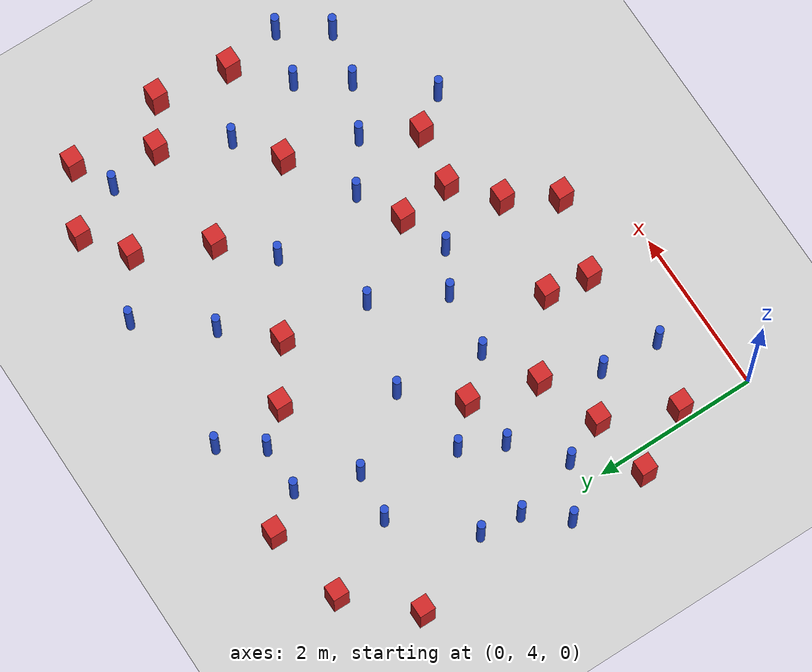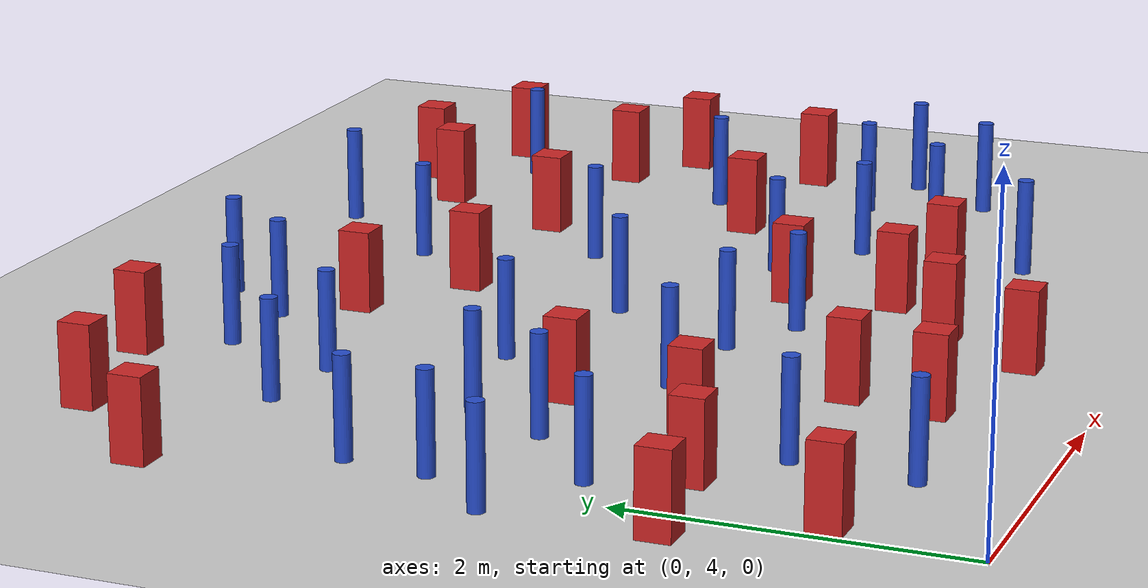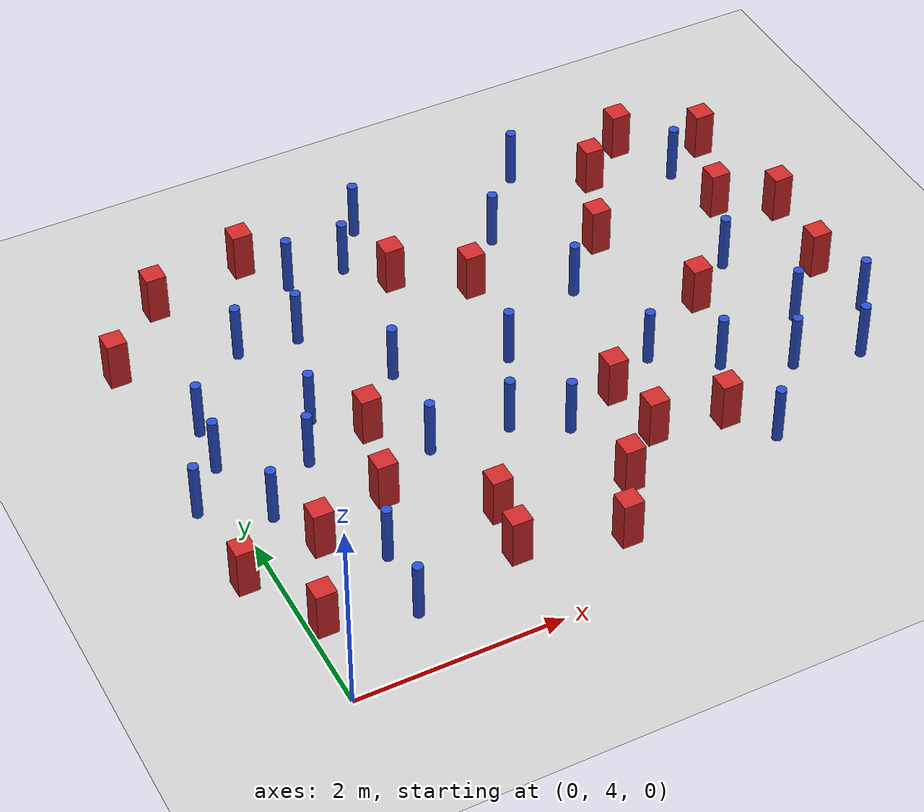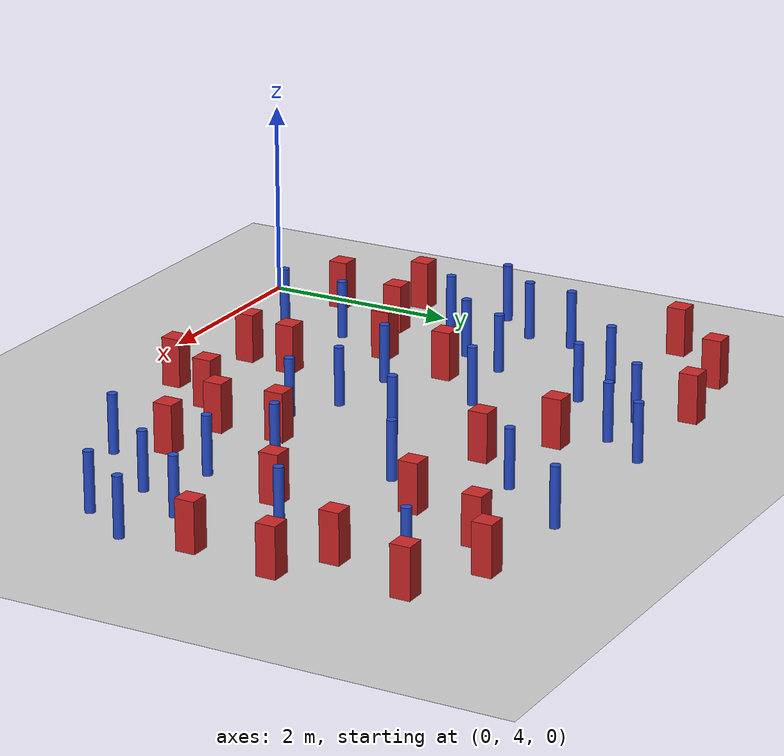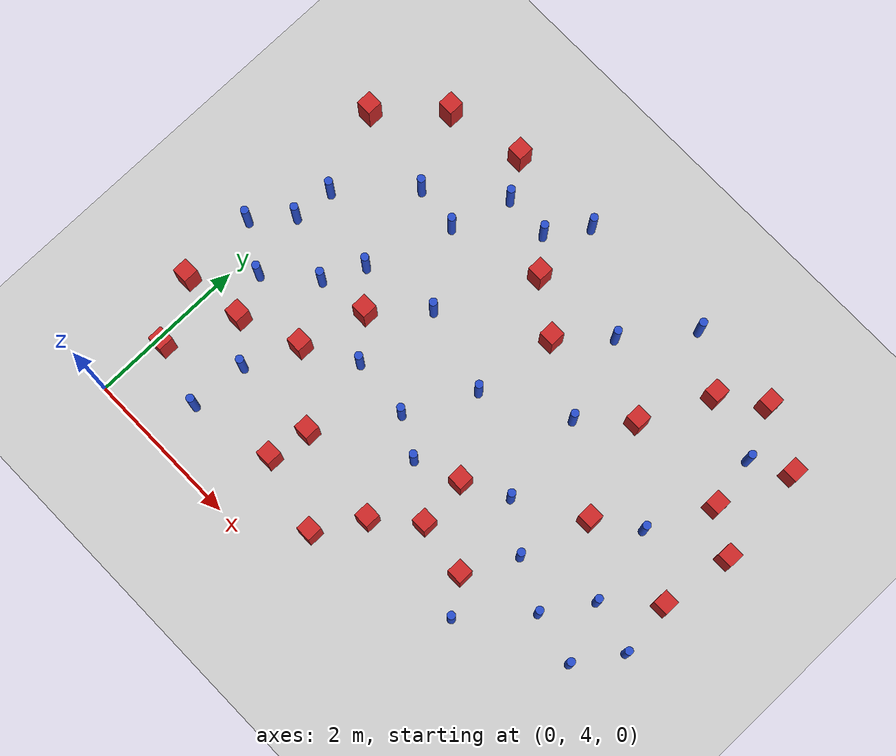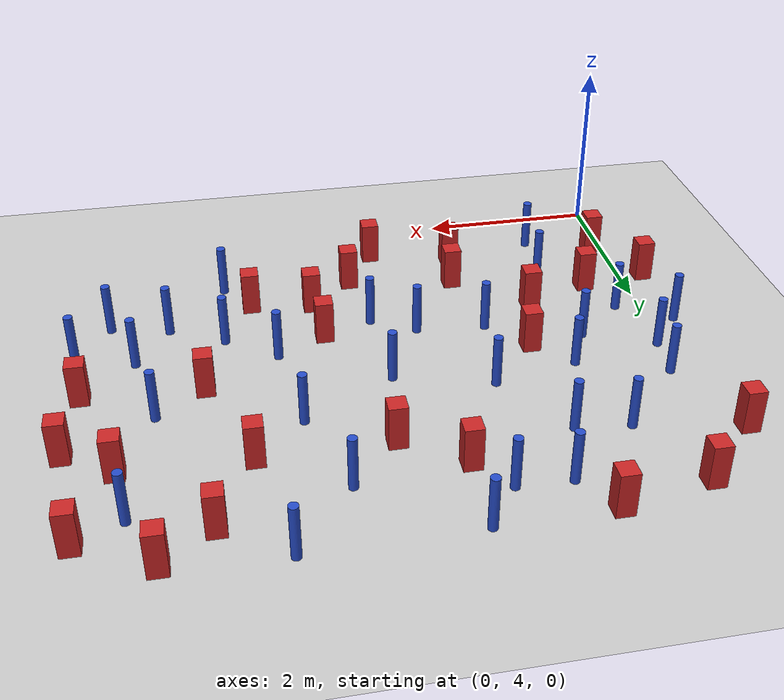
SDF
<sdf version="1.6">
 <world name="default">
  <model name="ground_plane">
   <static>1</static>
   <link name="link">
    <collision name="collision">
     <geometry><plane><normal>0 0 1</normal><size>100 100</size></plane></geometry>
     <surface><friction><ode><mu>100</mu><mu2>50</mu2></ode></friction></surface>
    </collision>
    <visual name="visual">
     <cast_shadows>0</cast_shadows>
     <geometry><plane><normal>0 0 1</normal><size>100 100</size></plane></geometry>
     <material>
      <ambient>1.0 1.0 1.0 1.0</ambient>
      <diffuse>0.8 0.8 0.8 1.0</diffuse>
      <specular>0.01 0.01 0.01 1.000000</specular>
     </material>
    </visual>
   </link>
  </model>
  <model name="square_post_obstacle2">
   <static>true</static>
   <pose>5.06235247222 6.9928608238 1.91545236811e-07 -7.35059704564e-06 1.12565212e-07 2.39332434364e-05</pose>
   <link name="link">
    <pose>0 0 0.25 0 -0 0</pose>
    <inertial>
     <mass>100</mass>
     <inertia>
      <ixx>0.166667</ixx>
      <ixy>0</ixy>
      <ixz>0</ixz>
      <iyy>0.166667</iyy>
      <iyz>0</iyz>
      <izz>0.166667</izz>
     </inertia>
    </inertial>
    <collision name="collision"><geometry><box><size>.2 .2 .5</size></box></geometry></collision>
    <visual name="visual">
     <geometry><box><size>.2 .2 .5</size></box></geometry>
     <material>
      <script><name>Gazebo/Red</name><uri>file://media/materials/scripts/gazebo.material</uri></script>
     </material>
    </visual>
   </link>
  </model>
  <model name="square_post_obstacle3">
   <static>true</static>
   <pose>2.94044296209 4.58378525591 1.91545236811e-07 -7.35059704564e-06 1.12565212e-07 2.39332434364e-05</pose>
   <link name="link">
    <pose>0 0 0.25 0 -0 0</pose>
    <inertial>
     <mass>100</mass>
     <inertia>
      <ixx>0.166667</ixx>
      <ixy>0</ixy>
      <ixz>0</ixz>
      <iyy>0.166667</iyy>
      <iyz>0</iyz>
      <izz>0.166667</izz>
     </inertia>
    </inertial>
    <collision name="collision"><geometry><box><size>.2 .2 .5</size></box></geometry></collision>
    <visual name="visual">
     <geometry><box><size>.2 .2 .5</size></box></geometry>
     <material>
      <script><name>Gazebo/Red</name><uri>file://media/materials/scripts/gazebo.material</uri></script>
     </material>
    </visual>
   </link>
  </model>
  <model name="square_post_obstacle5">
   <static>true</static>
   <pose>0.504304640819 5.7172666368 1.91545236811e-07 -7.35059704564e-06 1.12565212e-07 2.39332434364e-05</pose>
   <link name="link">
    <pose>0 0 0.25 0 -0 0</pose>
    <inertial>
     <mass>100</mass>
     <inertia>
      <ixx>0.166667</ixx>
      <ixy>0</ixy>
      <ixz>0</ixz>
      <iyy>0.166667</iyy>
      <iyz>0</iyz>
      <izz>0.166667</izz>
     </inertia>
    </inertial>
    <collision name="collision"><geometry><box><size>.2 .2 .5</size></box></geometry></collision>
    <visual name="visual">
     <geometry><box><size>.2 .2 .5</size></box></geometry>
     <material>
      <script><name>Gazebo/Red</name><uri>file://media/materials/scripts/gazebo.material</uri></script>
     </material>
    </visual>
   </link>
  </model>
  <model name="square_post_obstacle6">
   <static>true</static>
   <pose>5.95766056087 8.14996641088 1.91545236811e-07 -7.35059704564e-06 1.12565212e-07 2.39332434364e-05</pose>
   <link name="link">
    <pose>0 0 0.25 0 -0 0</pose>
    <inertial>
     <mass>100</mass>
     <inertia>
      <ixx>0.166667</ixx>
      <ixy>0</ixy>
      <ixz>0</ixz>
      <iyy>0.166667</iyy>
      <iyz>0</iyz>
      <izz>0.166667</izz>
     </inertia>
    </inertial>
    <collision name="collision"><geometry><box><size>.2 .2 .5</size></box></geometry></collision>
    <visual name="visual">
     <geometry><box><size>.2 .2 .5</size></box></geometry>
     <material>
      <script><name>Gazebo/Red</name><uri>file://media/materials/scripts/gazebo.material</uri></script>
     </material>
    </visual>
   </link>
  </model>
  <model name="pole_obstacle5">
   <static>true</static>
   <pose>1.44780007454 8.27614773317 7.38925637345e-09 -8.47170692798e-08 1.24976764881e-08 -1.74513093027e-07</pose>
   <link name="link">
    <pose>0 0 0.3 0 -0 0</pose>
    <inertial>
     <mass>1</mass>
     <inertia><ixx>0.145833</ixx><ixy>0</ixy><ixz>0</ixz><iyy>0.145833</iyy><iyz>0</iyz><izz>0.125</izz></inertia>
    </inertial>
    <collision name="collision">
     <geometry><cylinder><radius>0.05</radius><length>.6</length></cylinder></geometry>
    </collision>
    <visual name="visual">
     <geometry><cylinder><radius>0.05</radius><length>.6</length></cylinder></geometry>
     <material>
      <script><name>Gazebo/Blue</name><uri>file://media/materials/scripts/gazebo.material</uri></script>
     </material>
    </visual>
   </link>
  </model>
  <model name="pole_obstacle10">
   <static>true</static>
   <pose>4.10078407601 7.67983366689 7.38925637345e-09 -8.47170692796e-08 1.24976764786e-08 -1.74513093032e-07</pose>
   <link name="link">
    <pose>0 0 0.3 0 -0 0</pose>
    <inertial>
     <mass>1</mass>
     <inertia><ixx>0.145833</ixx><ixy>0</ixy><ixz>0</ixz><iyy>0.145833</iyy><iyz>0</iyz><izz>0.125</izz></inertia>
    </inertial>
    <collision name="collision">
     <geometry><cylinder><radius>0.05</radius><length>.6</length></cylinder></geometry>
    </collision>
    <visual name="visual">
     <geometry><cylinder><radius>0.05</radius><length>.6</length></cylinder></geometry>
     <material>
      <script><name>Gazebo/Blue</name><uri>file://media/materials/scripts/gazebo.material</uri></script>
     </material>
    </visual>
   </link>
  </model>
  <model name="pole_obstacle13">
   <static>true</static>
   <pose>2.60298710889 9.47166998292 7.38925637345e-09 -8.47170692793e-08 1.24976764408e-08 -1.74513093041e-07</pose>
   <link name="link">
    <pose>0 0 0.3 0 -0 0</pose>
    <inertial>
     <mass>1</mass>
     <inertia><ixx>0.145833</ixx><ixy>0</ixy><ixz>0</ixz><iyy>0.145833</iyy><iyz>0</iyz><izz>0.125</izz></inertia>
    </inertial>
    <collision name="collision">
     <geometry><cylinder><radius>0.05</radius><length>.6</length></cylinder></geometry>
    </collision>
    <visual name="visual">
     <geometry><cylinder><radius>0.05</radius><length>.6</length></cylinder></geometry>
     <material>
      <script><name>Gazebo/Blue</name><uri>file://media/materials/scripts/gazebo.material</uri></script>
     </material>
    </visual>
   </link>
  </model>
  <model name="pole_obstacle21">
   <static>true</static>
   <pose>5.84438588983 8.80280604812 7.38925637345e-09 -8.471706928e-08 1.24976765081e-08 -1.74513093015e-07</pose>
   <link name="link">
    <pose>0 0 0.3 0 -0 0</pose>
    <inertial>
     <mass>1</mass>
     <inertia><ixx>0.145833</ixx><ixy>0</ixy><ixz>0</ixz><iyy>0.145833</iyy><iyz>0</iyz><izz>0.125</izz></inertia>
    </inertial>
    <collision name="collision">
     <geometry><cylinder><radius>0.05</radius><length>.6</length></cylinder></geometry>
    </collision>
    <visual name="visual">
     <geometry><cylinder><radius>0.05</radius><length>.6</length></cylinder></geometry>
     <material>
      <script><name>Gazebo/Blue</name><uri>file://media/materials/scripts/gazebo.material</uri></script>
     </material>
    </visual>
   </link>
  </model>
  <model name="square_post_obstacle34">
   <static>true</static>
   <pose>2.06675240171 5.36417711203 1.91545236811e-07 -7.35059704564e-06 1.12565212e-07 2.39332434364e-05</pose>
   <link name="link">
    <pose>0 0 0.25 0 -0 0</pose>
    <inertial>
     <mass>100</mass>
     <inertia>
      <ixx>0.166667</ixx>
      <ixy>0</ixy>
      <ixz>0</ixz>
      <iyy>0.166667</iyy>
      <iyz>0</iyz>
      <izz>0.166667</izz>
     </inertia>
    </inertial>
    <collision name="collision"><geometry><box><size>.2 .2 .5</size></box></geometry></collision>
    <visual name="visual">
     <geometry><box><size>.2 .2 .5</size></box></geometry>
     <material>
      <script><name>Gazebo/Red</name><uri>file://media/materials/scripts/gazebo.material</uri></script>
     </material>
    </visual>
   </link>
  </model>
  <model name="pole_obstacle31">
   <static>true</static>
   <pose>0.861258516437 8.34180682255 7.38925637345e-09 -8.47170692797e-08 1.249767648e-08 -1.74513093032e-07</pose>
   <link name="link">
    <pose>0 0 0.3 0 -0 0</pose>
    <inertial>
     <mass>1</mass>
     <inertia><ixx>0.145833</ixx><ixy>0</ixy><ixz>0</ixz><iyy>0.145833</iyy><iyz>0</iyz><izz>0.125</izz></inertia>
    </inertial>
    <collision name="collision">
     <geometry><cylinder><radius>0.05</radius><length>.6</length></cylinder></geometry>
    </collision>
    <visual name="visual">
     <geometry><cylinder><radius>0.05</radius><length>.6</length></cylinder></geometry>
     <material>
      <script><name>Gazebo/Blue</name><uri>file://media/materials/scripts/gazebo.material</uri></script>
     </material>
    </visual>
   </link>
  </model>
  <model name="pole_obstacle35">
   <static>true</static>
   <pose>3.15810378008 6.0194061179 7.38925637345e-09 -8.47170692798e-08 1.24976765033e-08 -1.74513093019e-07</pose>
   <link name="link">
    <pose>0 0 0.3 0 -0 0</pose>
    <inertial>
     <mass>1</mass>
     <inertia><ixx>0.145833</ixx><ixy>0</ixy><ixz>0</ixz><iyy>0.145833</iyy><iyz>0</iyz><izz>0.125</izz></inertia>
    </inertial>
    <collision name="collision">
     <geometry><cylinder><radius>0.05</radius><length>.6</length></cylinder></geometry>
    </collision>
    <visual name="visual">
     <geometry><cylinder><radius>0.05</radius><length>.6</length></cylinder></geometry>
     <material>
      <script><name>Gazebo/Blue</name><uri>file://media/materials/scripts/gazebo.material</uri></script>
     </material>
    </visual>
   </link>
  </model>
  <model name="pole_obstacle45">
   <static>true</static>
   <pose>1.09124608161 7.21371646466 7.38925637345e-09 -8.47170692799e-08 1.24976765033e-08 -1.74513093018e-07</pose>
   <link name="link">
    <pose>0 0 0.3 0 -0 0</pose>
    <inertial>
     <mass>1</mass>
     <inertia><ixx>0.145833</ixx><ixy>0</ixy><ixz>0</ixz><iyy>0.145833</iyy><iyz>0</iyz><izz>0.125</izz></inertia>
    </inertial>
    <collision name="collision">
     <geometry><cylinder><radius>0.05</radius><length>.6</length></cylinder></geometry>
    </collision>
    <visual name="visual">
     <geometry><cylinder><radius>0.05</radius><length>.6</length></cylinder></geometry>
     <material>
      <script><name>Gazebo/Blue</name><uri>file://media/materials/scripts/gazebo.material</uri></script>
     </material>
    </visual>
   </link>
  </model>
  <model name="square_post_obstacle47">
   <static>true</static>
   <pose>3.71556956101 6.2331272801 1.91545236811e-07 -7.35059704564e-06 1.12565212e-07 2.39332434364e-05</pose>
   <link name="link">
    <pose>0 0 0.25 0 -0 0</pose>
    <inertial>
     <mass>100</mass>
     <inertia>
      <ixx>0.166667</ixx>
      <ixy>0</ixy>
      <ixz>0</ixz>
      <iyy>0.166667</iyy>
      <iyz>0</iyz>
      <izz>0.166667</izz>
     </inertia>
    </inertial>
    <collision name="collision"><geometry><box><size>.2 .2 .5</size></box></geometry></collision>
    <visual name="visual">
     <geometry><box><size>.2 .2 .5</size></box></geometry>
     <material>
      <script><name>Gazebo/Red</name><uri>file://media/materials/scripts/gazebo.material</uri></script>
     </material>
    </visual>
   </link>
  </model>
  <model name="pole_obstacle46">
   <static>true</static>
   <pose>5.58350247466 7.35952652143 7.38925637345e-09 -8.47170692796e-08 1.24976764786e-08 -1.74513093032e-07</pose>
   <link name="link">
    <pose>0 0 0.3 0 -0 0</pose>
    <inertial>
     <mass>1</mass>
     <inertia><ixx>0.145833</ixx><ixy>0</ixy><ixz>0</ixz><iyy>0.145833</iyy><iyz>0</iyz><izz>0.125</izz></inertia>
    </inertial>
    <collision name="collision">
     <geometry><cylinder><radius>0.05</radius><length>.6</length></cylinder></geometry>
    </collision>
    <visual name="visual">
     <geometry><cylinder><radius>0.05</radius><length>.6</length></cylinder></geometry>
     <material>
      <script><name>Gazebo/Blue</name><uri>file://media/materials/scripts/gazebo.material</uri></script>
     </material>
    </visual>
   </link>
  </model>
  <model name="pole_obstacle48">
   <static>true</static>
   <pose>5.79716062875 6.38745709523 7.38925637345e-09 -8.47170692796e-08 1.24976764786e-08 -1.74513093032e-07</pose>
   <link name="link">
    <pose>0 0 0.3 0 -0 0</pose>
    <inertial>
     <mass>1</mass>
     <inertia><ixx>0.145833</ixx><ixy>0</ixy><ixz>0</ixz><iyy>0.145833</iyy><iyz>0</iyz><izz>0.125</izz></inertia>
    </inertial>
    <collision name="collision">
     <geometry><cylinder><radius>0.05</radius><length>.6</length></cylinder></geometry>
    </collision>
    <visual name="visual">
     <geometry><cylinder><radius>0.05</radius><length>.6</length></cylinder></geometry>
     <material>
      <script><name>Gazebo/Blue</name><uri>file://media/materials/scripts/gazebo.material</uri></script>
     </material>
    </visual>
   </link>
  </model>
  <model name="pole_obstacle54">
   <static>true</static>
   <pose>0.850812946218 6.719150006 7.38925637345e-09 -8.471706928e-08 1.24976765086e-08 -1.74513093015e-07</pose>
   <link name="link">
    <pose>0 0 0.3 0 -0 0</pose>
    <inertial>
     <mass>1</mass>
     <inertia><ixx>0.145833</ixx><ixy>0</ixy><ixz>0</ixz><iyy>0.145833</iyy><iyz>0</iyz><izz>0.125</izz></inertia>
    </inertial>
    <collision name="collision">
     <geometry><cylinder><radius>0.05</radius><length>.6</length></cylinder></geometry>
    </collision>
    <visual name="visual">
     <geometry><cylinder><radius>0.05</radius><length>.6</length></cylinder></geometry>
     <material>
      <script><name>Gazebo/Blue</name><uri>file://media/materials/scripts/gazebo.material</uri></script>
     </material>
    </visual>
   </link>
  </model>
  <model name="pole_obstacle59">
   <static>true</static>
   <pose>1.89300620791 6.3576229954 7.38925637345e-09 -8.47170692799e-08 1.24976765033e-08 -1.74513093018e-07</pose>
   <link name="link">
    <pose>0 0 0.3 0 -0 0</pose>
    <inertial>
     <mass>1</mass>
     <inertia><ixx>0.145833</ixx><ixy>0</ixy><ixz>0</ixz><iyy>0.145833</iyy><iyz>0</iyz><izz>0.125</izz></inertia>
    </inertial>
    <collision name="collision">
     <geometry><cylinder><radius>0.05</radius><length>.6</length></cylinder></geometry>
    </collision>
    <visual name="visual">
     <geometry><cylinder><radius>0.05</radius><length>.6</length></cylinder></geometry>
     <material>
      <script><name>Gazebo/Blue</name><uri>file://media/materials/scripts/gazebo.material</uri></script>
     </material>
    </visual>
   </link>
  </model>
  <model name="square_post_obstacle63">
   <static>true</static>
   <pose>3.28846430518 5.16249723521 1.91545236811e-07 -7.35059704564e-06 1.12565212e-07 2.39332434364e-05</pose>
   <link name="link">
    <pose>0 0 0.25 0 -0 0</pose>
    <inertial>
     <mass>100</mass>
     <inertia>
      <ixx>0.166667</ixx>
      <ixy>0</ixy>
      <ixz>0</ixz>
      <iyy>0.166667</iyy>
      <iyz>0</iyz>
      <izz>0.166667</izz>
     </inertia>
    </inertial>
    <collision name="collision"><geometry><box><size>.2 .2 .5</size></box></geometry></collision>
    <visual name="visual">
     <geometry><box><size>.2 .2 .5</size></box></geometry>
     <material>
      <script><name>Gazebo/Red</name><uri>file://media/materials/scripts/gazebo.material</uri></script>
     </material>
    </visual>
   </link>
  </model>
  <model name="pole_obstacle65">
   <static>true</static>
   <pose>5.42748906631 5.8150450313 7.38925637345e-09 -8.47170692796e-08 1.24976764786e-08 -1.74513093032e-07</pose>
   <link name="link">
    <pose>0 0 0.3 0 -0 0</pose>
    <inertial>
     <mass>1</mass>
     <inertia><ixx>0.145833</ixx><ixy>0</ixy><ixz>0</ixz><iyy>0.145833</iyy><iyz>0</iyz><izz>0.125</izz></inertia>
    </inertial>
    <collision name="collision">
     <geometry><cylinder><radius>0.05</radius><length>.6</length></cylinder></geometry>
    </collision>
    <visual name="visual">
     <geometry><cylinder><radius>0.05</radius><length>.6</length></cylinder></geometry>
     <material>
      <script><name>Gazebo/Blue</name><uri>file://media/materials/scripts/gazebo.material</uri></script>
     </material>
    </visual>
   </link>
  </model>
  <model name="square_post_obstacle68">
   <static>true</static>
   <pose>5.03919610929 9.06255679915 1.91545236811e-07 -7.35059704564e-06 1.12565212e-07 2.39332434364e-05</pose>
   <link name="link">
    <pose>0 0 0.25 0 -0 0</pose>
    <inertial>
     <mass>100</mass>
     <inertia>
      <ixx>0.166667</ixx>
      <ixy>0</ixy>
      <ixz>0</ixz>
      <iyy>0.166667</iyy>
      <iyz>0</iyz>
      <izz>0.166667</izz>
     </inertia>
    </inertial>
    <collision name="collision"><geometry><box><size>.2 .2 .5</size></box></geometry></collision>
    <visual name="visual">
     <geometry><box><size>.2 .2 .5</size></box></geometry>
     <material>
      <script><name>Gazebo/Red</name><uri>file://media/materials/scripts/gazebo.material</uri></script>
     </material>
    </visual>
   </link>
  </model>
  <model name="square_post_obstacle69">
   <static>true</static>
   <pose>3.23872049626 8.1666288961 1.91545236811e-07 -7.35059704564e-06 1.12565212e-07 2.39332434364e-05</pose>
   <link name="link">
    <pose>0 0 0.25 0 -0 0</pose>
    <inertial>
     <mass>100</mass>
     <inertia>
      <ixx>0.166667</ixx>
      <ixy>0</ixy>
      <ixz>0</ixz>
      <iyy>0.166667</iyy>
      <iyz>0</iyz>
      <izz>0.166667</izz>
     </inertia>
    </inertial>
    <collision name="collision"><geometry><box><size>.2 .2 .5</size></box></geometry></collision>
    <visual name="visual">
     <geometry><box><size>.2 .2 .5</size></box></geometry>
     <material>
      <script><name>Gazebo/Red</name><uri>file://media/materials/scripts/gazebo.material</uri></script>
     </material>
    </visual>
   </link>
  </model>
  <model name="pole_obstacle72">
   <static>true</static>
   <pose>-0.295193264282 6.59078988214 7.38925637345e-09 -8.47170692799e-08 1.24976765096e-08 -1.74513093014e-07</pose>
   <link name="link">
    <pose>0 0 0.3 0 -0 0</pose>
    <inertial>
     <mass>1</mass>
     <inertia><ixx>0.145833</ixx><ixy>0</ixy><ixz>0</ixz><iyy>0.145833</iyy><iyz>0</iyz><izz>0.125</izz></inertia>
    </inertial>
    <collision name="collision">
     <geometry><cylinder><radius>0.05</radius><length>.6</length></cylinder></geometry>
    </collision>
    <visual name="visual">
     <geometry><cylinder><radius>0.05</radius><length>.6</length></cylinder></geometry>
     <material>
      <script><name>Gazebo/Blue</name><uri>file://media/materials/scripts/gazebo.material</uri></script>
     </material>
    </visual>
   </link>
  </model>
  <model name="pole_obstacle74">
   <static>true</static>
   <pose>0.916451409593 4.62303158061 7.38925637345e-09 -8.471706928e-08 1.24976765086e-08 -1.74513093015e-07</pose>
   <link name="link">
    <pose>0 0 0.3 0 -0 0</pose>
    <inertial>
     <mass>1</mass>
     <inertia><ixx>0.145833</ixx><ixy>0</ixy><ixz>0</ixz><iyy>0.145833</iyy><iyz>0</iyz><izz>0.125</izz></inertia>
    </inertial>
    <collision name="collision">
     <geometry><cylinder><radius>0.05</radius><length>.6</length></cylinder></geometry>
    </collision>
    <visual name="visual">
     <geometry><cylinder><radius>0.05</radius><length>.6</length></cylinder></geometry>
     <material>
      <script><name>Gazebo/Blue</name><uri>file://media/materials/scripts/gazebo.material</uri></script>
     </material>
    </visual>
   </link>
  </model>
  <model name="pole_obstacle84">
   <static>true</static>
   <pose>3.75408639511 8.72141571553 7.38925637345e-09 -8.47170692793e-08 1.24976764408e-08 -1.74513093041e-07</pose>
   <link name="link">
    <pose>0 0 0.3 0 -0 0</pose>
    <inertial>
     <mass>1</mass>
     <inertia><ixx>0.145833</ixx><ixy>0</ixy><ixz>0</ixz><iyy>0.145833</iyy><iyz>0</iyz><izz>0.125</izz></inertia>
    </inertial>
    <collision name="collision">
     <geometry><cylinder><radius>0.05</radius><length>.6</length></cylinder></geometry>
    </collision>
    <visual name="visual">
     <geometry><cylinder><radius>0.05</radius><length>.6</length></cylinder></geometry>
     <material>
      <script><name>Gazebo/Blue</name><uri>file://media/materials/scripts/gazebo.material</uri></script>
     </material>
    </visual>
   </link>
  </model>
  <model name="square_post_obstacle86">
   <static>true</static>
   <pose>4.48271032673 5.48418261986 1.91545236811e-07 -7.35059704564e-06 1.12565212e-07 2.39332434364e-05</pose>
   <link name="link">
    <pose>0 0 0.25 0 -0 0</pose>
    <inertial>
     <mass>100</mass>
     <inertia>
      <ixx>0.166667</ixx>
      <ixy>0</ixy>
      <ixz>0</ixz>
      <iyy>0.166667</iyy>
      <iyz>0</iyz>
      <izz>0.166667</izz>
     </inertia>
    </inertial>
    <collision name="collision"><geometry><box><size>.2 .2 .5</size></box></geometry></collision>
    <visual name="visual">
     <geometry><box><size>.2 .2 .5</size></box></geometry>
     <material>
      <script><name>Gazebo/Red</name><uri>file://media/materials/scripts/gazebo.material</uri></script>
     </material>
    </visual>
   </link>
  </model>
  <model name="pole_obstacle104">
   <static>true</static>
   <pose>0.972809522442 5.34181543459 7.38925637345e-09 -8.471706928e-08 1.24976765144e-08 -1.74513093012e-07</pose>
   <link name="link">
    <pose>0 0 0.3 0 -0 0</pose>
    <inertial>
     <mass>1</mass>
     <inertia><ixx>0.145833</ixx><ixy>0</ixy><ixz>0</ixz><iyy>0.145833</iyy><iyz>0</iyz><izz>0.125</izz></inertia>
    </inertial>
    <collision name="collision">
     <geometry><cylinder><radius>0.05</radius><length>.6</length></cylinder></geometry>
    </collision>
    <visual name="visual">
     <geometry><cylinder><radius>0.05</radius><length>.6</length></cylinder></geometry>
     <material>
      <script><name>Gazebo/Blue</name><uri>file://media/materials/scripts/gazebo.material</uri></script>
     </material>
    </visual>
   </link>
  </model>
  <model name="square_post_obstacle93">
   <static>true</static>
   <pose>4.63072089913 8.19556529756 1.91545236811e-07 -7.35059704564e-06 1.12565212e-07 2.39332434364e-05</pose>
   <link name="link">
    <pose>0 0 0.25 0 -0 0</pose>
    <inertial>
     <mass>100</mass>
     <inertia>
      <ixx>0.166667</ixx>
      <ixy>0</ixy>
      <ixz>0</ixz>
      <iyy>0.166667</iyy>
      <iyz>0</iyz>
      <izz>0.166667</izz>
     </inertia>
    </inertial>
    <collision name="collision"><geometry><box><size>.2 .2 .5</size></box></geometry></collision>
    <visual name="visual">
     <geometry><box><size>.2 .2 .5</size></box></geometry>
     <material>
      <script><name>Gazebo/Red</name><uri>file://media/materials/scripts/gazebo.material</uri></script>
     </material>
    </visual>
   </link>
  </model>
  <model name="square_post_obstacle97">
   <static>true</static>
   <pose>6.30805559217 9.05166252349 1.91545236811e-07 -7.35059704564e-06 1.12565212e-07 2.39332434364e-05</pose>
   <link name="link">
    <pose>0 0 0.25 0 -0 0</pose>
    <inertial>
     <mass>100</mass>
     <inertia>
      <ixx>0.166667</ixx>
      <ixy>0</ixy>
      <ixz>0</ixz>
      <iyy>0.166667</iyy>
      <iyz>0</iyz>
      <izz>0.166667</izz>
     </inertia>
    </inertial>
    <collision name="collision"><geometry><box><size>.2 .2 .5</size></box></geometry></collision>
    <visual name="visual">
     <geometry><box><size>.2 .2 .5</size></box></geometry>
     <material>
      <script><name>Gazebo/Red</name><uri>file://media/materials/scripts/gazebo.material</uri></script>
     </material>
    </visual>
   </link>
  </model>
  <model name="pole_obstacle114">
   <static>true</static>
   <pose>2.66777357866 6.28893906028 7.38925637345e-09 -8.47170692798e-08 1.24976765033e-08 -1.74513093019e-07</pose>
   <link name="link">
    <pose>0 0 0.3 0 -0 0</pose>
    <inertial>
     <mass>1</mass>
     <inertia><ixx>0.145833</ixx><ixy>0</ixy><ixz>0</ixz><iyy>0.145833</iyy><iyz>0</iyz><izz>0.125</izz></inertia>
    </inertial>
    <collision name="collision">
     <geometry><cylinder><radius>0.05</radius><length>.6</length></cylinder></geometry>
    </collision>
    <visual name="visual">
     <geometry><cylinder><radius>0.05</radius><length>.6</length></cylinder></geometry>
     <material>
      <script><name>Gazebo/Blue</name><uri>file://media/materials/scripts/gazebo.material</uri></script>
     </material>
    </visual>
   </link>
  </model>
  <model name="square_post_obstacle107">
   <static>true</static>
   <pose>6.47852062134 7.82085304324 1.91545236811e-07 -7.35059704564e-06 1.12565212e-07 2.39332434364e-05</pose>
   <link name="link">
    <pose>0 0 0.25 0 -0 0</pose>
    <inertial>
     <mass>100</mass>
     <inertia>
      <ixx>0.166667</ixx>
      <ixy>0</ixy>
      <ixz>0</ixz>
      <iyy>0.166667</iyy>
      <iyz>0</iyz>
      <izz>0.166667</izz>
     </inertia>
    </inertial>
    <collision name="collision"><geometry><box><size>.2 .2 .5</size></box></geometry></collision>
    <visual name="visual">
     <geometry><box><size>.2 .2 .5</size></box></geometry>
     <material>
      <script><name>Gazebo/Red</name><uri>file://media/materials/scripts/gazebo.material</uri></script>
     </material>
    </visual>
   </link>
  </model>
  <model name="pole_obstacle120">
   <static>true</static>
   <pose>0.282761277065 6.23535609487 7.38925637345e-09 -8.47170692799e-08 1.24976765101e-08 -1.74513093014e-07</pose>
   <link name="link">
    <pose>0 0 0.3 0 -0 0</pose>
    <inertial>
     <mass>1</mass>
     <inertia><ixx>0.145833</ixx><ixy>0</ixy><ixz>0</ixz><iyy>0.145833</iyy><iyz>0</iyz><izz>0.125</izz></inertia>
    </inertial>
    <collision name="collision">
     <geometry><cylinder><radius>0.05</radius><length>.6</length></cylinder></geometry>
    </collision>
    <visual name="visual">
     <geometry><cylinder><radius>0.05</radius><length>.6</length></cylinder></geometry>
     <material>
      <script><name>Gazebo/Blue</name><uri>file://media/materials/scripts/gazebo.material</uri></script>
     </material>
    </visual>
   </link>
  </model>
  <model name="pole_obstacle131">
   <static>true</static>
   <pose>3.09718325935 7.1231164346 7.38925637345e-09 -8.47170692798e-08 1.24976765033e-08 -1.74513093019e-07</pose>
   <link name="link">
    <pose>0 0 0.3 0 -0 0</pose>
    <inertial>
     <mass>1</mass>
     <inertia><ixx>0.145833</ixx><ixy>0</ixy><ixz>0</ixz><iyy>0.145833</iyy><iyz>0</iyz><izz>0.125</izz></inertia>
    </inertial>
    <collision name="collision">
     <geometry><cylinder><radius>0.05</radius><length>.6</length></cylinder></geometry>
    </collision>
    <visual name="visual">
     <geometry><cylinder><radius>0.05</radius><length>.6</length></cylinder></geometry>
     <material>
      <script><name>Gazebo/Blue</name><uri>file://media/materials/scripts/gazebo.material</uri></script>
     </material>
    </visual>
   </link>
  </model>
  <model name="pole_obstacle133">
   <static>true</static>
   <pose>2.03169730994 7.41567497414 7.38925637345e-09 -8.47170692799e-08 1.24976765014e-08 -1.7451309302e-07</pose>
   <link name="link">
    <pose>0 0 0.3 0 -0 0</pose>
    <inertial>
     <mass>1</mass>
     <inertia><ixx>0.145833</ixx><ixy>0</ixy><ixz>0</ixz><iyy>0.145833</iyy><iyz>0</iyz><izz>0.125</izz></inertia>
    </inertial>
    <collision name="collision">
     <geometry><cylinder><radius>0.05</radius><length>.6</length></cylinder></geometry>
    </collision>
    <visual name="visual">
     <geometry><cylinder><radius>0.05</radius><length>.6</length></cylinder></geometry>
     <material>
      <script><name>Gazebo/Blue</name><uri>file://media/materials/scripts/gazebo.material</uri></script>
     </material>
    </visual>
   </link>
  </model>
  <model name="square_post_obstacle115">
   <static>true</static>
   <pose>0.407437464073 9.26282906458 1.91545236811e-07 -7.35059704564e-06 1.12565212e-07 2.39332434364e-05</pose>
   <link name="link">
    <pose>0 0 0.25 0 -0 0</pose>
    <inertial>
     <mass>100</mass>
     <inertia>
      <ixx>0.166667</ixx>
      <ixy>0</ixy>
      <ixz>0</ixz>
      <iyy>0.166667</iyy>
      <iyz>0</iyz>
      <izz>0.166667</izz>
     </inertia>
    </inertial>
    <collision name="collision"><geometry><box><size>.2 .2 .5</size></box></geometry></collision>
    <visual name="visual">
     <geometry><box><size>.2 .2 .5</size></box></geometry>
     <material>
      <script><name>Gazebo/Red</name><uri>file://media/materials/scripts/gazebo.material</uri></script>
     </material>
    </visual>
   </link>
  </model>
  <model name="square_post_obstacle116">
   <static>true</static>
   <pose>-0.266940834739 8.56591460411 1.91545236811e-07 -7.35059704564e-06 1.12565212e-07 2.39332434364e-05</pose>
   <link name="link">
    <pose>0 0 0.25 0 -0 0</pose>
    <inertial>
     <mass>100</mass>
     <inertia>
      <ixx>0.166667</ixx>
      <ixy>0</ixy>
      <ixz>0</ixz>
      <iyy>0.166667</iyy>
      <iyz>0</iyz>
      <izz>0.166667</izz>
     </inertia>
    </inertial>
    <collision name="collision"><geometry><box><size>.2 .2 .5</size></box></geometry></collision>
    <visual name="visual">
     <geometry><box><size>.2 .2 .5</size></box></geometry>
     <material>
      <script><name>Gazebo/Red</name><uri>file://media/materials/scripts/gazebo.material</uri></script>
     </material>
    </visual>
   </link>
  </model>
  <model name="pole_obstacle144">
   <static>true</static>
   <pose>1.6840775209 9.01393423953 7.38925637345e-09 -8.47170692798e-08 1.24976764881e-08 -1.74513093027e-07</pose>
   <link name="link">
    <pose>0 0 0.3 0 -0 0</pose>
    <inertial>
     <mass>1</mass>
     <inertia><ixx>0.145833</ixx><ixy>0</ixy><ixz>0</ixz><iyy>0.145833</iyy><iyz>0</iyz><izz>0.125</izz></inertia>
    </inertial>
    <collision name="collision">
     <geometry><cylinder><radius>0.05</radius><length>.6</length></cylinder></geometry>
    </collision>
    <visual name="visual">
     <geometry><cylinder><radius>0.05</radius><length>.6</length></cylinder></geometry>
     <material>
      <script><name>Gazebo/Blue</name><uri>file://media/materials/scripts/gazebo.material</uri></script>
     </material>
    </visual>
   </link>
  </model>
  <model name="square_post_obstacle135">
   <static>true</static>
   <pose>2.59313448612 8.60952337341 1.91545236811e-07 -7.35059704564e-06 1.12565212e-07 2.39332434364e-05</pose>
   <link name="link">
    <pose>0 0 0.25 0 -0 0</pose>
    <inertial>
     <mass>100</mass>
     <inertia>
      <ixx>0.166667</ixx>
      <ixy>0</ixy>
      <ixz>0</ixz>
      <iyy>0.166667</iyy>
      <iyz>0</iyz>
      <izz>0.166667</izz>
     </inertia>
    </inertial>
    <collision name="collision"><geometry><box><size>.2 .2 .5</size></box></geometry></collision>
    <visual name="visual">
     <geometry><box><size>.2 .2 .5</size></box></geometry>
     <material>
      <script><name>Gazebo/Red</name><uri>file://media/materials/scripts/gazebo.material</uri></script>
     </material>
    </visual>
   </link>
  </model>
  <model name="pole_obstacle145">
   <static>true</static>
   <pose>0.0751989661376 7.0361620424 7.38925637345e-09 -8.47170692799e-08 1.24976765062e-08 -1.74513093018e-07</pose>
   <link name="link">
    <pose>0 0 0.3 0 -0 0</pose>
    <inertial>
     <mass>1</mass>
     <inertia><ixx>0.145833</ixx><ixy>0</ixy><ixz>0</ixz><iyy>0.145833</iyy><iyz>0</iyz><izz>0.125</izz></inertia>
    </inertial>
    <collision name="collision">
     <geometry><cylinder><radius>0.05</radius><length>.6</length></cylinder></geometry>
    </collision>
    <visual name="visual">
     <geometry><cylinder><radius>0.05</radius><length>.6</length></cylinder></geometry>
     <material>
      <script><name>Gazebo/Blue</name><uri>file://media/materials/scripts/gazebo.material</uri></script>
     </material>
    </visual>
   </link>
  </model>
  <model name="square_post_obstacle157">
   <static>true</static>
   <pose>1.98395490565 4.8446984677 1.91545236811e-07 -7.35059704564e-06 1.12565212e-07 2.39332434364e-05</pose>
   <link name="link">
    <pose>0 0 0.25 0 -0 0</pose>
    <inertial>
     <mass>100</mass>
     <inertia>
      <ixx>0.166667</ixx>
      <ixy>0</ixy>
      <ixz>0</ixz>
      <iyy>0.166667</iyy>
      <iyz>0</iyz>
      <izz>0.166667</izz>
     </inertia>
    </inertial>
    <collision name="collision"><geometry><box><size>.2 .2 .5</size></box></geometry></collision>
    <visual name="visual">
     <geometry><box><size>.2 .2 .5</size></box></geometry>
     <material>
      <script><name>Gazebo/Red</name><uri>file://media/materials/scripts/gazebo.material</uri></script>
     </material>
    </visual>
   </link>
  </model>
  <model name="pole_obstacle165">
   <static>true</static>
   <pose>4.77956951451 5.06015363262 7.38925637345e-09 -8.47170692796e-08 1.24976764786e-08 -1.74513093032e-07</pose>
   <link name="link">
    <pose>0 0 0.3 0 -0 0</pose>
    <inertial>
     <mass>1</mass>
     <inertia><ixx>0.145833</ixx><ixy>0</ixy><ixz>0</ixz><iyy>0.145833</iyy><iyz>0</iyz><izz>0.125</izz></inertia>
    </inertial>
    <collision name="collision">
     <geometry><cylinder><radius>0.05</radius><length>.6</length></cylinder></geometry>
    </collision>
    <visual name="visual">
     <geometry><cylinder><radius>0.05</radius><length>.6</length></cylinder></geometry>
     <material>
      <script><name>Gazebo/Blue</name><uri>file://media/materials/scripts/gazebo.material</uri></script>
     </material>
    </visual>
   </link>
  </model>
  <model name="square_post_obstacle166">
   <static>true</static>
   <pose>1.38304953322 9.46353611732 1.91545236811e-07 -7.35059704564e-06 1.12565212e-07 2.39332434364e-05</pose>
   <link name="link">
    <pose>0 0 0.25 0 -0 0</pose>
    <inertial>
     <mass>100</mass>
     <inertia>
      <ixx>0.166667</ixx>
      <ixy>0</ixy>
      <ixz>0</ixz>
      <iyy>0.166667</iyy>
      <iyz>0</iyz>
      <izz>0.166667</izz>
     </inertia>
    </inertial>
    <collision name="collision"><geometry><box><size>.2 .2 .5</size></box></geometry></collision>
    <visual name="visual">
     <geometry><box><size>.2 .2 .5</size></box></geometry>
     <material>
      <script><name>Gazebo/Red</name><uri>file://media/materials/scripts/gazebo.material</uri></script>
     </material>
    </visual>
   </link>
  </model>
  <model name="pole_obstacle182">
   <static>true</static>
   <pose>4.8168763667 6.12243714626 7.38925637345e-09 -8.47170692796e-08 1.24976764786e-08 -1.74513093032e-07</pose>
   <link name="link">
    <pose>0 0 0.3 0 -0 0</pose>
    <inertial>
     <mass>1</mass>
     <inertia><ixx>0.145833</ixx><ixy>0</ixy><ixz>0</ixz><iyy>0.145833</iyy><iyz>0</iyz><izz>0.125</izz></inertia>
    </inertial>
    <collision name="collision">
     <geometry><cylinder><radius>0.05</radius><length>.6</length></cylinder></geometry>
    </collision>
    <visual name="visual">
     <geometry><cylinder><radius>0.05</radius><length>.6</length></cylinder></geometry>
     <material>
      <script><name>Gazebo/Blue</name><uri>file://media/materials/scripts/gazebo.material</uri></script>
     </material>
    </visual>
   </link>
  </model>
  <model name="square_post_obstacle176">
   <static>true</static>
   <pose>0.132229089947 4.85572869736 1.91545236811e-07 -7.35059704564e-06 1.12565212e-07 2.39332434364e-05</pose>
   <link name="link">
    <pose>0 0 0.25 0 -0 0</pose>
    <inertial>
     <mass>100</mass>
     <inertia>
      <ixx>0.166667</ixx>
      <ixy>0</ixy>
      <ixz>0</ixz>
      <iyy>0.166667</iyy>
      <iyz>0</iyz>
      <izz>0.166667</izz>
     </inertia>
    </inertial>
    <collision name="collision"><geometry><box><size>.2 .2 .5</size></box></geometry></collision>
    <visual name="visual">
     <geometry><box><size>.2 .2 .5</size></box></geometry>
     <material>
      <script><name>Gazebo/Red</name><uri>file://media/materials/scripts/gazebo.material</uri></script>
     </material>
    </visual>
   </link>
  </model>
  <model name="square_post_obstacle177">
   <static>true</static>
   <pose>6.35155381581 6.91640678061 1.91545236811e-07 -7.35059704564e-06 1.12565212e-07 2.39332434364e-05</pose>
   <link name="link">
    <pose>0 0 0.25 0 -0 0</pose>
    <inertial>
     <mass>100</mass>
     <inertia>
      <ixx>0.166667</ixx>
      <ixy>0</ixy>
      <ixz>0</ixz>
      <iyy>0.166667</iyy>
      <iyz>0</iyz>
      <izz>0.166667</izz>
     </inertia>
    </inertial>
    <collision name="collision"><geometry><box><size>.2 .2 .5</size></box></geometry></collision>
    <visual name="visual">
     <geometry><box><size>.2 .2 .5</size></box></geometry>
     <material>
      <script><name>Gazebo/Red</name><uri>file://media/materials/scripts/gazebo.material</uri></script>
     </material>
    </visual>
   </link>
  </model>
  <model name="square_post_obstacle181">
   <static>true</static>
   <pose>3.78356728386 5.59501417024 1.91545236811e-07 -7.35059704564e-06 1.12565212e-07 2.39332434364e-05</pose>
   <link name="link">
    <pose>0 0 0.25 0 -0 0</pose>
    <inertial>
     <mass>100</mass>
     <inertia>
      <ixx>0.166667</ixx>
      <ixy>0</ixy>
      <ixz>0</ixz>
      <iyy>0.166667</iyy>
      <iyz>0</iyz>
      <izz>0.166667</izz>
     </inertia>
    </inertial>
    <collision name="collision"><geometry><box><size>.2 .2 .5</size></box></geometry></collision>
    <visual name="visual">
     <geometry><box><size>.2 .2 .5</size></box></geometry>
     <material>
      <script><name>Gazebo/Red</name><uri>file://media/materials/scripts/gazebo.material</uri></script>
     </material>
    </visual>
   </link>
  </model>
  <model name="square_post_obstacle188">
   <static>true</static>
   <pose>1.49018313716 6.82048001387 1.91545236811e-07 -7.35059704564e-06 1.12565212e-07 2.39332434364e-05</pose>
   <link name="link">
    <pose>0 0 0.25 0 -0 0</pose>
    <inertial>
     <mass>100</mass>
     <inertia>
      <ixx>0.166667</ixx>
      <ixy>0</ixy>
      <ixz>0</ixz>
      <iyy>0.166667</iyy>
      <iyz>0</iyz>
      <izz>0.166667</izz>
     </inertia>
    </inertial>
    <collision name="collision"><geometry><box><size>.2 .2 .5</size></box></geometry></collision>
    <visual name="visual">
     <geometry><box><size>.2 .2 .5</size></box></geometry>
     <material>
      <script><name>Gazebo/Red</name><uri>file://media/materials/scripts/gazebo.material</uri></script>
     </material>
    </visual>
   </link>
  </model>
  <model name="square_post_obstacle189">
   <static>true</static>
   <pose>1.25802414155 6.00124202612 1.91545236811e-07 -7.35059704564e-06 1.12565212e-07 2.39332434364e-05</pose>
   <link name="link">
    <pose>0 0 0.25 0 -0 0</pose>
    <inertial>
     <mass>100</mass>
     <inertia>
      <ixx>0.166667</ixx>
      <ixy>0</ixy>
      <ixz>0</ixz>
      <iyy>0.166667</iyy>
      <iyz>0</iyz>
      <izz>0.166667</izz>
     </inertia>
    </inertial>
    <collision name="collision"><geometry><box><size>.2 .2 .5</size></box></geometry></collision>
    <visual name="visual">
     <geometry><box><size>.2 .2 .5</size></box></geometry>
     <material>
      <script><name>Gazebo/Red</name><uri>file://media/materials/scripts/gazebo.material</uri></script>
     </material>
    </visual>
   </link>
  </model>
  <model name="square_post_obstacle194">
   <static>true</static>
   <pose>-0.266458157626 5.61105294132 1.91545236811e-07 -7.35059704564e-06 1.12565212e-07 2.39332434364e-05</pose>
   <link name="link">
    <pose>0 0 0.25 0 -0 0</pose>
    <inertial>
     <mass>100</mass>
     <inertia>
      <ixx>0.166667</ixx>
      <ixy>0</ixy>
      <ixz>0</ixz>
      <iyy>0.166667</iyy>
      <iyz>0</iyz>
      <izz>0.166667</izz>
     </inertia>
    </inertial>
    <collision name="collision"><geometry><box><size>.2 .2 .5</size></box></geometry></collision>
    <visual name="visual">
     <geometry><box><size>.2 .2 .5</size></box></geometry>
     <material>
      <script><name>Gazebo/Red</name><uri>file://media/materials/scripts/gazebo.material</uri></script>
     </material>
    </visual>
   </link>
  </model>
  <model name="square_post_obstacle201">
   <static>true</static>
   <pose>5.55142044318 9.43596419343 1.91545236811e-07 -7.35059704564e-06 1.12565212e-07 2.39332434364e-05</pose>
   <link name="link">
    <pose>0 0 0.25 0 -0 0</pose>
    <inertial>
     <mass>100</mass>
     <inertia>
      <ixx>0.166667</ixx>
      <ixy>0</ixy>
      <ixz>0</ixz>
      <iyy>0.166667</iyy>
      <iyz>0</iyz>
      <izz>0.166667</izz>
     </inertia>
    </inertial>
    <collision name="collision"><geometry><box><size>.2 .2 .5</size></box></geometry></collision>
    <visual name="visual">
     <geometry><box><size>.2 .2 .5</size></box></geometry>
     <material>
      <script><name>Gazebo/Red</name><uri>file://media/materials/scripts/gazebo.material</uri></script>
     </material>
    </visual>
   </link>
  </model>
  <model name="pole_obstacle204">
   <static>true</static>
   <pose>4.25748503886 6.51690388148 7.38925637345e-09 -8.47170692796e-08 1.24976764786e-08 -1.74513093032e-07</pose>
   <link name="link">
    <pose>0 0 0.3 0 -0 0</pose>
    <inertial>
     <mass>1</mass>
     <inertia><ixx>0.145833</ixx><ixy>0</ixy><ixz>0</ixz><iyy>0.145833</iyy><iyz>0</iyz><izz>0.125</izz></inertia>
    </inertial>
    <collision name="collision">
     <geometry><cylinder><radius>0.05</radius><length>.6</length></cylinder></geometry>
    </collision>
    <visual name="visual">
     <geometry><cylinder><radius>0.05</radius><length>.6</length></cylinder></geometry>
     <material>
      <script><name>Gazebo/Blue</name><uri>file://media/materials/scripts/gazebo.material</uri></script>
     </material>
    </visual>
   </link>
  </model>
  <model name="pole_obstacle205">
   <static>true</static>
   <pose>4.37019253027 9.49926017929 7.38925637345e-09 -8.471706928e-08 1.24976765081e-08 -1.74513093015e-07</pose>
   <link name="link">
    <pose>0 0 0.3 0 -0 0</pose>
    <inertial>
     <mass>1</mass>
     <inertia><ixx>0.145833</ixx><ixy>0</ixy><ixz>0</ixz><iyy>0.145833</iyy><iyz>0</iyz><izz>0.125</izz></inertia>
    </inertial>
    <collision name="collision">
     <geometry><cylinder><radius>0.05</radius><length>.6</length></cylinder></geometry>
    </collision>
    <visual name="visual">
     <geometry><cylinder><radius>0.05</radius><length>.6</length></cylinder></geometry>
     <material>
      <script><name>Gazebo/Blue</name><uri>file://media/materials/scripts/gazebo.material</uri></script>
     </material>
    </visual>
   </link>
  </model>
  <model name="pole_obstacle207">
   <static>true</static>
   <pose>6.44446434429 6.21843148244 7.38925637345e-09 -8.47170692796e-08 1.24976764786e-08 -1.74513093032e-07</pose>
   <link name="link">
    <pose>0 0 0.3 0 -0 0</pose>
    <inertial>
     <mass>1</mass>
     <inertia><ixx>0.145833</ixx><ixy>0</ixy><ixz>0</ixz><iyy>0.145833</iyy><iyz>0</iyz><izz>0.125</izz></inertia>
    </inertial>
    <collision name="collision">
     <geometry><cylinder><radius>0.05</radius><length>.6</length></cylinder></geometry>
    </collision>
    <visual name="visual">
     <geometry><cylinder><radius>0.05</radius><length>.6</length></cylinder></geometry>
     <material>
      <script><name>Gazebo/Blue</name><uri>file://media/materials/scripts/gazebo.material</uri></script>
     </material>
    </visual>
   </link>
  </model>
  <model name="pole_obstacle208">
   <static>true</static>
   <pose>6.08077889315 5.66619083582 7.38925637345e-09 -8.47170692796e-08 1.24976764786e-08 -1.74513093032e-07</pose>
   <link name="link">
    <pose>0 0 0.3 0 -0 0</pose>
    <inertial>
     <mass>1</mass>
     <inertia><ixx>0.145833</ixx><ixy>0</ixy><ixz>0</ixz><iyy>0.145833</iyy><iyz>0</iyz><izz>0.125</izz></inertia>
    </inertial>
    <collision name="collision">
     <geometry><cylinder><radius>0.05</radius><length>.6</length></cylinder></geometry>
    </collision>
    <visual name="visual">
     <geometry><cylinder><radius>0.05</radius><length>.6</length></cylinder></geometry>
     <material>
      <script><name>Gazebo/Blue</name><uri>file://media/materials/scripts/gazebo.material</uri></script>
     </material>
    </visual>
   </link>
  </model>
  <model name="pole_obstacle227">
   <static>true</static>
   <pose>0.128773662323 7.53976249917 7.38925637345e-09 -8.471706928e-08 1.24976765036e-08 -1.74513093019e-07</pose>
   <link name="link">
    <pose>0 0 0.3 0 -0 0</pose>
    <inertial>
     <mass>1</mass>
     <inertia><ixx>0.145833</ixx><ixy>0</ixy><ixz>0</ixz><iyy>0.145833</iyy><iyz>0</iyz><izz>0.125</izz></inertia>
    </inertial>
    <collision name="collision">
     <geometry><cylinder><radius>0.05</radius><length>.6</length></cylinder></geometry>
    </collision>
    <visual name="visual">
     <geometry><cylinder><radius>0.05</radius><length>.6</length></cylinder></geometry>
     <material>
      <script><name>Gazebo/Blue</name><uri>file://media/materials/scripts/gazebo.material</uri></script>
     </material>
    </visual>
   </link>
  </model>
  <model name="pole_obstacle230">
   <static>true</static>
   <pose>2.26386669916 8.99667507765 7.38925637345e-09 -8.47170692793e-08 1.24976764408e-08 -1.74513093041e-07</pose>
   <link name="link">
    <pose>0 0 0.3 0 -0 0</pose>
    <inertial>
     <mass>1</mass>
     <inertia><ixx>0.145833</ixx><ixy>0</ixy><ixz>0</ixz><iyy>0.145833</iyy><iyz>0</iyz><izz>0.125</izz></inertia>
    </inertial>
    <collision name="collision">
     <geometry><cylinder><radius>0.05</radius><length>.6</length></cylinder></geometry>
    </collision>
    <visual name="visual">
     <geometry><cylinder><radius>0.05</radius><length>.6</length></cylinder></geometry>
     <material>
      <script><name>Gazebo/Blue</name><uri>file://media/materials/scripts/gazebo.material</uri></script>
     </material>
    </visual>
   </link>
  </model>
 </world>
</sdf>
